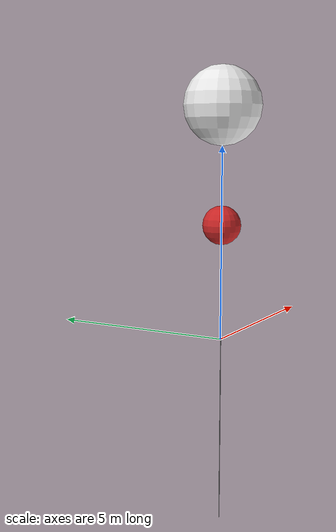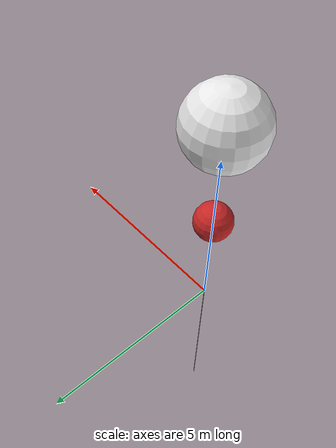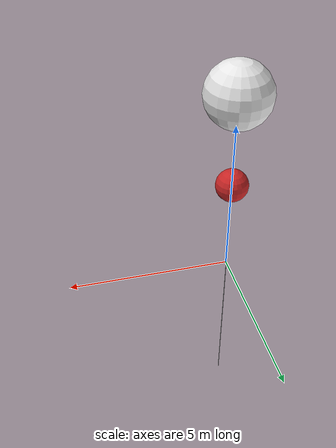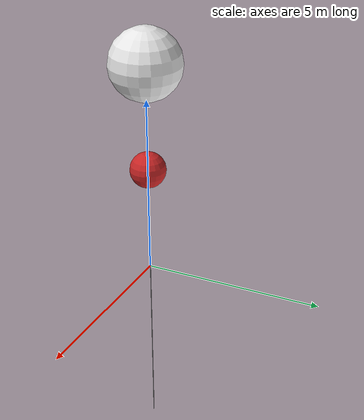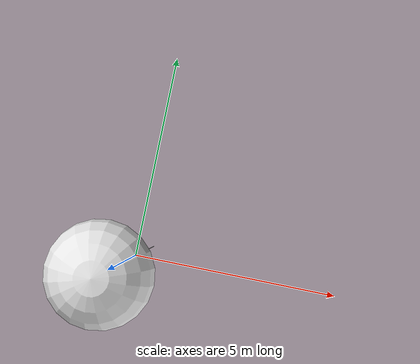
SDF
<?xml version='1.0'?>
<sdf version="1.6">
  <model name='light_target'>
    <link name='link'>
      <inertial>
        <mass>0.2</mass>
        <inertia>
          <ixx>0.0188197</ixx>
          <ixy>0</ixy>
          <ixz>0</ixz>
          <iyy>0.0188197</iyy>
          <iyz>0</iyz>
          <izz>7.46307e-07</izz>
        </inertia>
        <pose>0 0 0 0 0 0</pose>
      </inertial>
      <self_collide>0</self_collide>
      <enable_wind>0</enable_wind>
      <kinematic>0</kinematic>
      <pose>0 0 0 0 0 0</pose>
      <visual name='visual_cable'>
        <geometry>
          <cylinder>
            <radius>0.01</radius>
            <length>10</length>
          </cylinder>
        </geometry>
        <material>
          <script>
            <name>Gazebo/Grey</name>
            <uri>file://media/materials/scripts/gazebo.material</uri>
          </script>
          <shader type='pixel' />
        </material>
        <pose>0 0 0 0 0 0</pose>
        <transparency>0</transparency>
        <cast_shadows>1</cast_shadows>
      </visual>
      <visual name='visual_light'>
        <pose>0 0 3 0 0 0</pose>
        <geometry>
          <sphere>
            <radius>0.5</radius>
          </sphere>
        </geometry>
        <material>
          <script>
            <name>Gazebo/RedGlow</name>
            <uri>file://media/materials/scripts/gazebo.material</uri>
          </script>
          <shader type='pixel' />
        </material>
        <transparency>0</transparency>
        <cast_shadows>1</cast_shadows>
      </visual>
      <visual name='visual_baloon'>
        <pose>0 0 6 0 0 0</pose>
        <geometry>
          <sphere>
            <radius>1.0</radius>
          </sphere>
        </geometry>
        <material>
          <script>
            <name>Gazebo/White</name>
            <uri>file://media/materials/scripts/gazebo.material</uri>
          </script>
          <shader type='pixel' />
        </material>
        <transparency>0</transparency>
        <cast_shadows>1</cast_shadows>
      </visual>
      <!-- This is red ball in front of aircraft to test tresholds -->
      <collision name='collision'>
        <laser_retro>0</laser_retro>
        <max_contacts>10</max_contacts>
        <pose>0 0 0 0 0 0</pose>
        <geometry>
          <cylinder>
            <radius>0.01</radius>
            <length>10</length>
          </cylinder>
        </geometry>
        <surface>
          <friction>
            <ode>
              <mu>1</mu>
              <mu2>1</mu2>
              <fdir1>0 0 0</fdir1>
              <slip1>0</slip1>
              <slip2>0</slip2>
            </ode>
            <torsional>
              <coefficient>1</coefficient>
              <patch_radius>0</patch_radius>
              <surface_radius>0</surface_radius>
              <use_patch_radius>1</use_patch_radius>
              <ode>
                <slip>0</slip>
              </ode>
            </torsional>
          </friction>
          <bounce>
            <restitution_coefficient>0</restitution_coefficient>
            <threshold>1e+06</threshold>
          </bounce>
          <contact>
            <collide_without_contact>0</collide_without_contact>
            <collide_without_contact_bitmask>1</collide_without_contact_bitmask>
            <collide_bitmask>1</collide_bitmask>
            <ode>
              <soft_cfm>0</soft_cfm>
              <soft_erp>0.2</soft_erp>
              <kp>1e+13</kp>
              <kd>1</kd>
              <max_vel>0.01</max_vel>
              <min_depth>0</min_depth>
            </ode>
            <bullet>
              <split_impulse>1</split_impulse>
              <split_impulse_penetration_threshold>-0.01</split_impulse_penetration_threshold>
              <soft_cfm>0</soft_cfm>
              <soft_erp>0.2</soft_erp>
              <kp>1e+13</kp>
              <kd>1</kd>
            </bullet>
          </contact>
        </surface>
      </collision>
    </link>
    <static>0</static>
    <allow_auto_disable>1</allow_auto_disable>
  </model>
</sdf>
